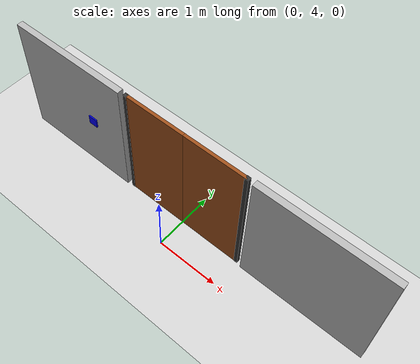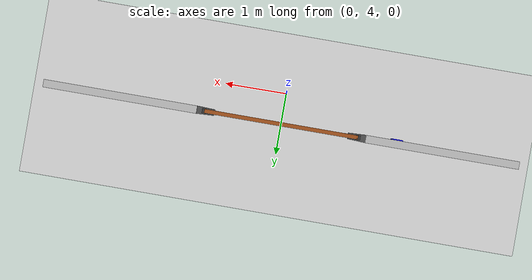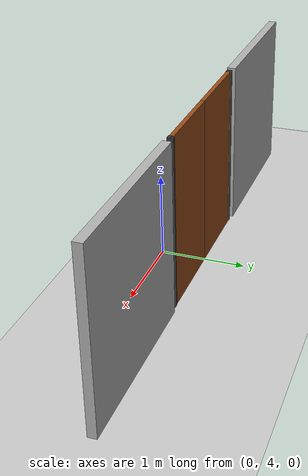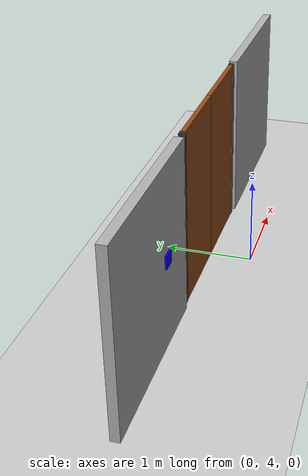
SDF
<?xml version="1.0" ?>
<sdf version="1.6">
  <world name="default">
    <plugin filename="ignition-gazebo-physics-system" name="ignition::gazebo::systems::Physics"/>
    <plugin filename="ignition-gazebo-user-commands-system" name="ignition::gazebo::systems::UserCommands"/>
    <plugin filename="ignition-gazebo-scene-broadcaster-system" name="ignition::gazebo::systems::SceneBroadcaster"/>
    <plugin filename="ignition-gazebo-sensors-system" name="ignition::gazebo::systems::Sensors"/>
    <plugin filename="ignition-gazebo-contact-system" name="ignition::gazebo::systems::Contact"/>

    <physics type="ode">
      <real_time_update_rate>333.0</real_time_update_rate>
      <max_step_size>0.003</max_step_size>
      <ode><solver><type>quick</type><iters>100</iters></solver></ode>
    </physics>

    <gravity>0 0 -9.8</gravity>

    <light name="sun" type="directional">
      <pose>0 0 10 0 0 0</pose>
      <diffuse>0.8 0.8 0.8 1</diffuse>
      <direction>-0.5 0.1 -0.9</direction>
    </light>

    <model name="ground_plane">
      <static>true</static>
      <pose>0 0 0 0 0 0</pose>
      <link name="link">
        <collision name="collision">
          <geometry><plane><normal>0 0 1</normal><size>20 20</size></plane></geometry>
        </collision>
        <visual name="visual">
          <geometry><plane><normal>0 0 1</normal><size>20 20</size></plane></geometry>
          <material><ambient>0.8 0.8 0.8 1</ambient><diffuse>0.8 0.8 0.8 1</diffuse></material>
        </visual>
      </link>
    </model>

    <!-- Hallway walls - closer to doors for tighter fit -->
    <model name="hallway_wall_left">
      <static>true</static>
      <pose>-2.1 4.5 1.0 0 0 0</pose>
      <link name="link">
        <collision name="col"><geometry><box><size>2.0 0.1 2.0</size></box></geometry></collision>
        <visual name="vis"><geometry><box><size>2.0 0.1 2.0</size></box></geometry>
          <material><ambient>0.5 0.5 0.5 1</ambient><diffuse>0.7 0.7 0.7 1</diffuse></material>
        </visual>
      </link>
    </model>

    <model name="hallway_wall_right">
      <static>true</static>
      <pose>2.1 4.5 1.0 0 0 0</pose>
      <link name="link">
        <collision name="col"><geometry><box><size>2.0 0.1 2.0</size></box></geometry></collision>
        <visual name="vis"><geometry><box><size>2.0 0.1 2.0</size></box></geometry>
          <material><ambient>0.5 0.5 0.5 1</ambient><diffuse>0.7 0.7 0.7 1</diffuse></material>
        </visual>
      </link>
    </model>

    <!-- LEFT DOOR (hinge on left side, opens left) -->
    <model name="handicap_door_left">
      <pose>-1.0 4.5 1.0 0 0 0</pose>

      <link name="door_frame">
        <visual name="v"><geometry><box><size>0.06 0.06 2.0</size></box></geometry>
          <material><ambient>0.2 0.2 0.2 1</ambient></material>
        </visual>
      </link>

      <link name="door_leaf">
        <inertial><mass>1.0</mass><inertia><ixx>0.1</ixx><iyy>0.1</iyy><izz>0.1</izz></inertia></inertial>
        <!-- Door extends to the right (+X), hinge on left -->
        <collision name="leaf_col"><pose>0.5 0 0 0 0 0</pose><geometry><box><size>1.0 0.05 2.0</size></box></geometry></collision>
        <visual name="leaf_vis"><pose>0.5 0 0 0 0 0</pose><geometry><box><size>1.0 0.05 2.0</size></box></geometry>
          <material><ambient>0.6 0.3 0.1 1</ambient><diffuse>0.6 0.3 0.1 1</diffuse></material>
        </visual>
      </link>

      <joint name="door_hinge" type="revolute">
        <parent>door_frame</parent>
        <child>door_leaf</child>
        <axis>
          <xyz>0 0 1</xyz>
          <limit>
            <lower>0.0</lower>
            <upper>1.57</upper>
            <velocity>0.6</velocity>
            <effort>20</effort>
          </limit>
          <dynamics>
            <damping>5.0</damping>
            <friction>0.1</friction>
          </dynamics>
        </axis>
      </joint>

      <joint name="world_fix" type="fixed"><parent>world</parent><child>door_frame</child></joint>

      <plugin filename="ignition-gazebo-joint-state-publisher-system" name="ignition::gazebo::systems::JointStatePublisher"/>
      <plugin filename="ignition-gazebo-joint-position-controller-system" name="ignition::gazebo::systems::JointPositionController">
        <joint_name>door_hinge</joint_name>
        <topic>/model/handicap_door_left/door_cmd</topic>
        <p_gain>100</p_gain>
        <i_gain>1</i_gain>
        <d_gain>10</d_gain>
      </plugin>
    </model>

    <!-- RIGHT DOOR (hinge on right side, opens right) -->
    <model name="handicap_door_right">
      <pose>1.0 4.5 1.0 0 0 0</pose>

      <link name="door_frame">
        <visual name="v"><geometry><box><size>0.06 0.06 2.0</size></box></geometry>
          <material><ambient>0.2 0.2 0.2 1</ambient></material>
        </visual>
      </link>

      <link name="door_leaf">
        <inertial><mass>1.0</mass><inertia><ixx>0.1</ixx><iyy>0.1</iyy><izz>0.1</izz></inertia></inertial>
        <!-- Door extends to the left (-X), hinge on right -->
        <collision name="leaf_col"><pose>-0.5 0 0 0 0 0</pose><geometry><box><size>1.0 0.05 2.0</size></box></geometry></collision>
        <visual name="leaf_vis"><pose>-0.5 0 0 0 0 0</pose><geometry><box><size>1.0 0.05 2.0</size></box></geometry>
          <material><ambient>0.6 0.3 0.1 1</ambient><diffuse>0.6 0.3 0.1 1</diffuse></material>
        </visual>
      </link>

      <joint name="door_hinge" type="revolute">
        <parent>door_frame</parent>
        <child>door_leaf</child>
        <axis>
          <xyz>0 0 1</xyz>
          <limit>
            <lower>-1.57</lower>
            <upper>0.0</upper>
            <velocity>0.6</velocity>
            <effort>20</effort>
          </limit>
          <dynamics>
            <damping>5.0</damping>
            <friction>0.1</friction>
          </dynamics>
        </axis>
      </joint>

      <joint name="world_fix" type="fixed"><parent>world</parent><child>door_frame</child></joint>

      <plugin filename="ignition-gazebo-joint-state-publisher-system" name="ignition::gazebo::systems::JointStatePublisher"/>
      <plugin filename="ignition-gazebo-joint-position-controller-system" name="ignition::gazebo::systems::JointPositionController">
        <joint_name>door_hinge</joint_name>
        <topic>/model/handicap_door_right/door_cmd</topic>
        <p_gain>100</p_gain>
        <i_gain>1</i_gain>
        <d_gain>10</d_gain>
      </plugin>
    </model>

    <!-- ADA Button on left side -->
    <model name="ada_button">
      <static>true</static>
      <pose>-1.7 4.44 1.0 0 0 0</pose>
      <link name="link">
        <visual name="v"><geometry><box><size>0.15 0.02 0.15</size></box></geometry>
          <material><ambient>0 0 1 1</ambient><diffuse>0 0 1 1</diffuse></material>
        </visual>
        <collision name="button_collision"><geometry><box><size>0.15 0.02 0.15</size></box></geometry></collision>
        <sensor name="button_contact_sensor" type="contact"><contact><collision>button_collision</collision></contact></sensor>
      </link>

      <plugin filename="ignition-gazebo-touchplugin-system" name="ignition::gazebo::systems::TouchPlugin">
        <target>hsrb</target>
        <namespace>button_logic</namespace>
        <time>0.01</time>
        <enabled>true</enabled>
      </plugin>

    </model>
  </world>
</sdf>
